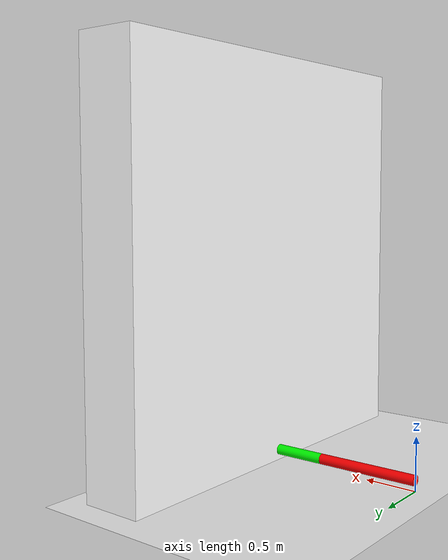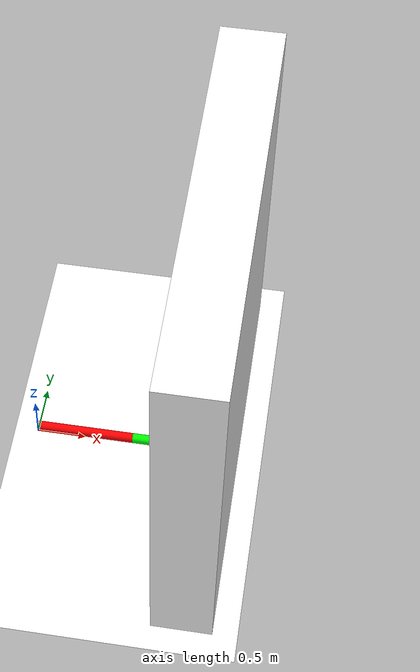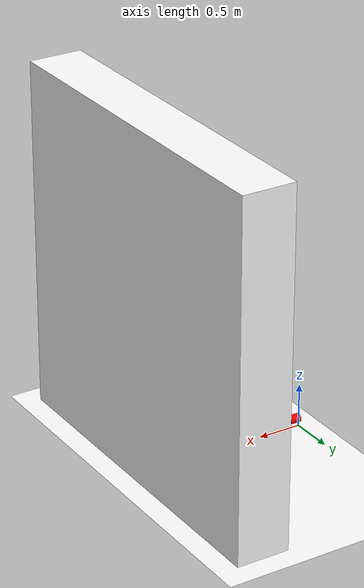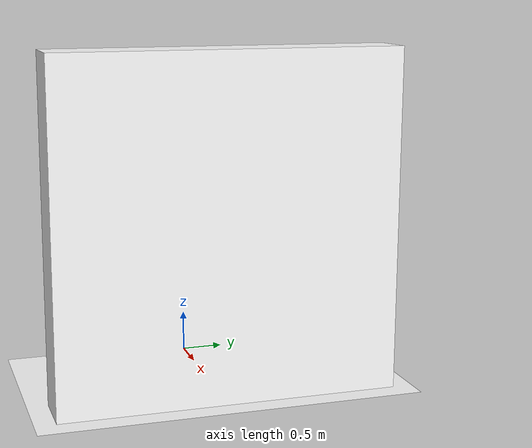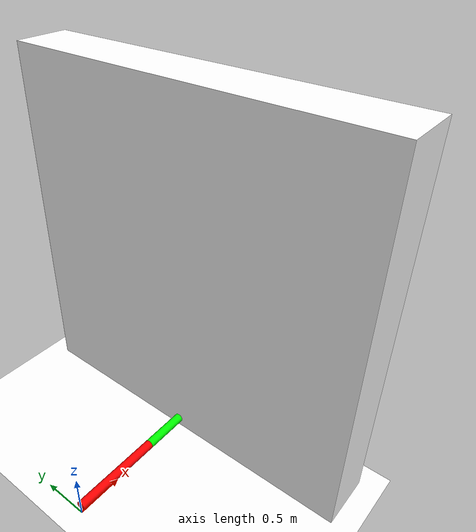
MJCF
<mujoco>
	<option gravity="0 0 0"/>

	<worldbody>
        <light diffuse=".5 .5 .5" pos="0 0 10" dir="0 0 -1"/>

		<!-- ground -->
		<geom type="plane" pos="0 0 0" size="0 0 0.1" rgba="1 1 1 1"/>

		<!-- wall -->
		<geom name="wall" type="box" pos="1.8 0.0 2.0" euler="0 90 0" size="2 2 0.3" rgba="1 1 1 1" mass="1" condim="1" priority="2"/>

		<!-- link 1 -->
		<body pos="0.5 0 0.1" euler="0 90 0">
			<joint name="pin1" type="hinge" axis="-1 0 0"  pos="0 0 -0.5"  />
			<geom name="link1" type="cylinder" size=".05 0.5" rgba="1 0 0 1" mass="1"  condim="1"/>

			<!-- link 2 -->
			<body pos="0.0 0 1.0" euler="0 0 0">
				<joint name="pin2" type="hinge" axis="-1 0 0" pos="0 0 -0.5"/>
				<geom name="link2" type="cylinder" size=".05 0.5" rgba="0 1 0 1" mass="1" condim="1"/>
				<!-- gripper -->
				<body name="dummy body" pos="0 0 0.5">
					 <inertial pos="0 0 0" mass="0.0001" diaginertia="0 0 0" />
					 <geom type="sphere" pos="0 0 0" size="0.05" rgba="0 0 1 1"/>
					 <site name="tip" pos="0 0 0" rgba="1 0 0 0" size="0.01"/>
				</body>
			</body>
		</body>
	</worldbody>
	<sensor>
		<framepos objtype="site" objname="tip"/>
		<framelinvel objtype="site" objname="tip"/>
		<force site="tip"/>
	</sensor>
	<actuator>
		<motor joint="pin1" name= "torque1" gear="1" ctrllimited="true" ctrlrange="-100 100"/>
		<motor joint="pin2" name= "torque2" gear="1" ctrllimited="true" ctrlrange="-100 100"/>
	</actuator>
</mujoco>
